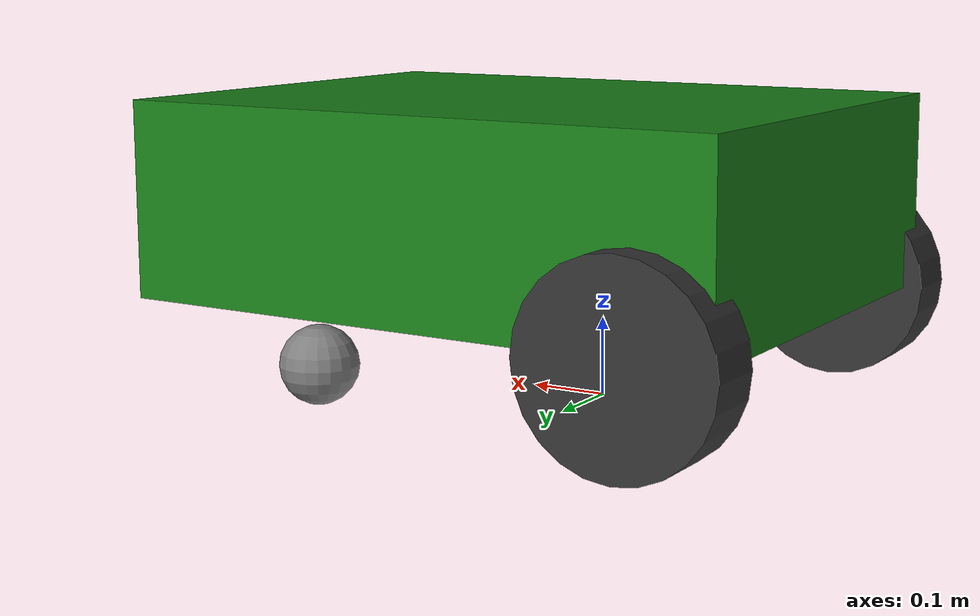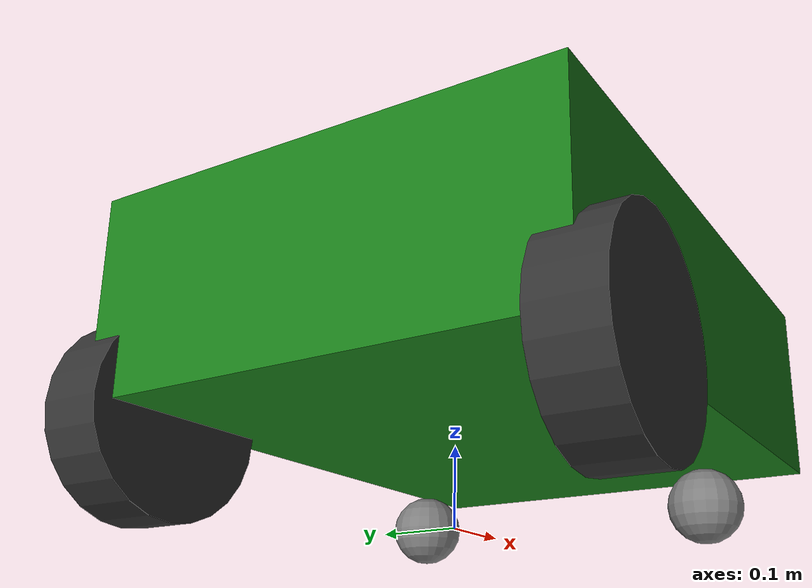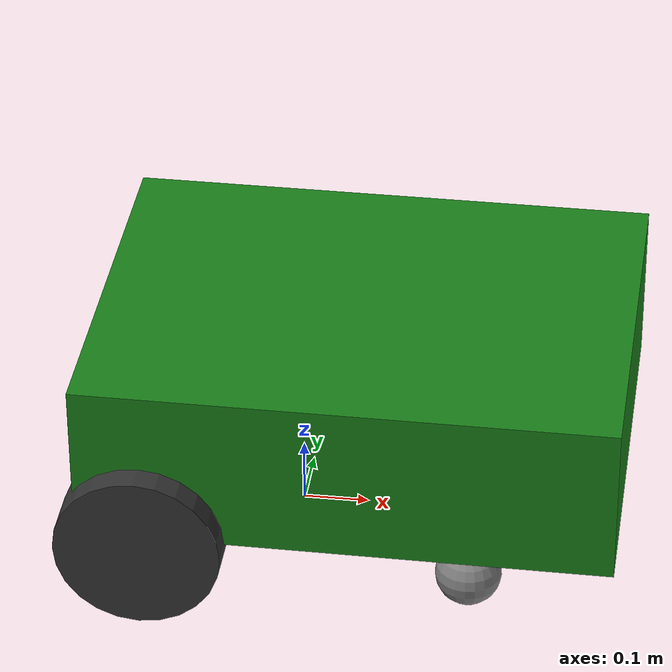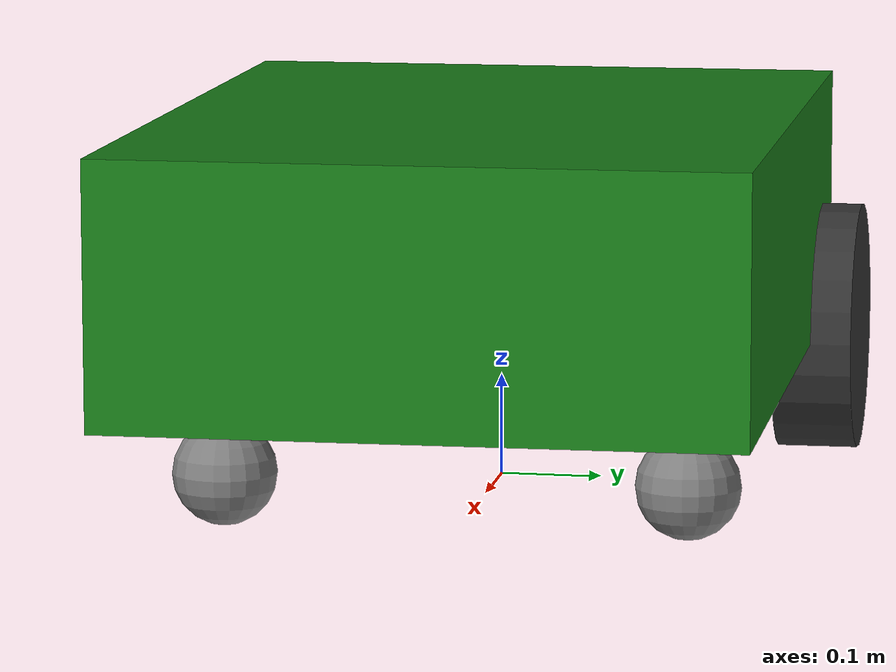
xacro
<?xml version="1.0"?>
<robot name="lawnmower" xmlns:xacro="http://ros.org/wiki/xacro">

  <!-- Dimensiones hardware (idénticas al robot real) -->
  <xacro:property name="base_length"  value="0.80"/>
  <xacro:property name="base_width"   value="0.60"/>
  <xacro:property name="base_height"  value="0.25"/>
  <xacro:property name="base_mass"    value="30.0"/>

  <!-- Ruedas motrices MY1016Z3 (WENC_RADIUS=0.125, CPR=28) -->
  <xacro:property name="wheel_radius" value="0.125"/>
  <xacro:property name="wheel_width"  value="0.08"/>
  <xacro:property name="wheel_mass"   value="1.5"/>
  <xacro:property name="wheel_x"      value="-0.20"/>

  <!-- Casters delanteros -->
  <xacro:property name="caster_radius" value="0.05"/>
  <xacro:property name="caster_mass"   value="0.3"/>
  <xacro:property name="caster_x"      value="0.28"/>
  <xacro:property name="caster_y"      value="0.22"/>

  <!-- Offsets sensores -->
  <xacro:property name="lidar_z"  value="0.30"/>   <!-- Unitree L2 -->
  <xacro:property name="gps_z"    value="0.35"/>   <!-- Here4 -->
  <xacro:property name="imu_z"    value="0.00"/>   <!-- Cube Orange+ IMU (dentro chasis) -->

  <!-- REP-105: base_footprint al nivel del suelo -->
  <link name="base_footprint"/>
  <joint name="base_footprint_joint" type="fixed">
    <parent link="base_footprint"/>
    <child  link="base_link"/>
    <origin xyz="0 0 ${wheel_radius}"/>
  </joint>

  <link name="base_link">
    <visual>
      <origin xyz="0.10 0 ${base_height/2}"/>
      <geometry><box size="${base_length} ${base_width} ${base_height}"/></geometry>
      <material name="green"><color rgba="0.1 0.5 0.1 1"/></material>
    </visual>
    <collision>
      <origin xyz="0.10 0 ${base_height/2}"/>
      <geometry><box size="${base_length} ${base_width} ${base_height}"/></geometry>
    </collision>
    <inertial>
      <mass value="${base_mass}"/>
      <origin xyz="0.10 0 ${base_height/2}"/>
      <inertia
        ixx="${base_mass/12 * (base_width*base_width + base_height*base_height)}"
        ixy="0" ixz="0"
        iyy="${base_mass/12 * (base_length*base_length + base_height*base_height)}"
        iyz="0"
        izz="${base_mass/12 * (base_length*base_length + base_width*base_width)}"/>
    </inertial>
  </link>

  <!-- Ruedas motrices (continuous) — O3DE DiffDriveComponent usa estos joints -->
  <xacro:macro name="drive_wheel" params="name y_sign">
    <link name="${name}">
      <visual>
        <origin xyz="0 0 0" rpy="${pi/2} 0 0"/>
        <geometry><cylinder radius="${wheel_radius}" length="${wheel_width}"/></geometry>
        <material name="dark_gray"><color rgba="0.2 0.2 0.2 1"/></material>
      </visual>
      <collision>
        <origin xyz="0 0 0" rpy="${pi/2} 0 0"/>
        <geometry><cylinder radius="${wheel_radius}" length="${wheel_width}"/></geometry>
      </collision>
      <inertial>
        <mass value="${wheel_mass}"/>
        <inertia
          ixx="${wheel_mass/12 * (3*wheel_radius*wheel_radius + wheel_width*wheel_width)}"
          ixy="0" ixz="0"
          iyy="${wheel_mass/12 * (3*wheel_radius*wheel_radius + wheel_width*wheel_width)}"
          iyz="0"
          izz="${wheel_mass/2 * wheel_radius*wheel_radius}"/>
      </inertial>
    </link>
    <joint name="${name}_joint" type="continuous">
      <parent link="base_link"/>
      <child  link="${name}"/>
      <origin xyz="${wheel_x} ${y_sign * base_width/2} 0"/>
      <axis xyz="0 1 0"/>
      <dynamics damping="0.01" friction="0.1"/>
      <limit effort="50" velocity="10"/>
    </joint>
  </xacro:macro>

  <xacro:drive_wheel name="left_wheel"  y_sign=" 1"/>
  <xacro:drive_wheel name="right_wheel" y_sign="-1"/>

  <!-- Casters (fixed) — O3DE les asigna material de baja fricción -->
  <xacro:macro name="caster_wheel" params="name y_sign">
    <link name="${name}">
      <visual>
        <geometry><sphere radius="${caster_radius}"/></geometry>
        <material name="gray"><color rgba="0.5 0.5 0.5 1"/></material>
      </visual>
      <collision>
        <geometry><sphere radius="${caster_radius}"/></geometry>
      </collision>
      <inertial>
        <mass value="${caster_mass}"/>
        <inertia
          ixx="${2.0/5.0 * caster_mass * caster_radius*caster_radius}"
          ixy="0" ixz="0"
          iyy="${2.0/5.0 * caster_mass * caster_radius*caster_radius}"
          iyz="0"
          izz="${2.0/5.0 * caster_mass * caster_radius*caster_radius}"/>
      </inertial>
    </link>
    <joint name="${name}_joint" type="fixed">
      <parent link="base_link"/>
      <child  link="${name}"/>
      <origin xyz="${caster_x} ${y_sign * caster_y} ${caster_radius - wheel_radius}"/>
    </joint>
  </xacro:macro>

  <xacro:caster_wheel name="left_caster"  y_sign=" 1"/>
  <xacro:caster_wheel name="right_caster" y_sign="-1"/>

  <!-- Frames de sensores — se attach-ean en O3DE Editor como entidades hijas -->
  <link name="unilidar_lidar"/>   <!-- Unitree L2 — RGL LiDAR Component -->
  <joint name="lidar_joint" type="fixed">
    <parent link="base_link"/>
    <child  link="unilidar_lidar"/>
    <origin xyz="0.05 0 ${lidar_z}" rpy="0 0 0"/>
  </joint>

  <link name="imu_link"/>         <!-- IMU Component — 200Hz gaussian noise -->
  <joint name="imu_joint" type="fixed">
    <parent link="base_link"/>
    <child  link="imu_link"/>
    <origin xyz="0 0 ${imu_z}" rpy="0 0 0"/>
  </joint>

  <link name="gps_link"/>         <!-- GNSS Sensor Component — Here4 RTK sim -->
  <joint name="gps_joint" type="fixed">
    <parent link="base_link"/>
    <child  link="gps_link"/>
    <origin xyz="0 0 ${gps_z}" rpy="0 0 0"/>
  </joint>

</robot>
